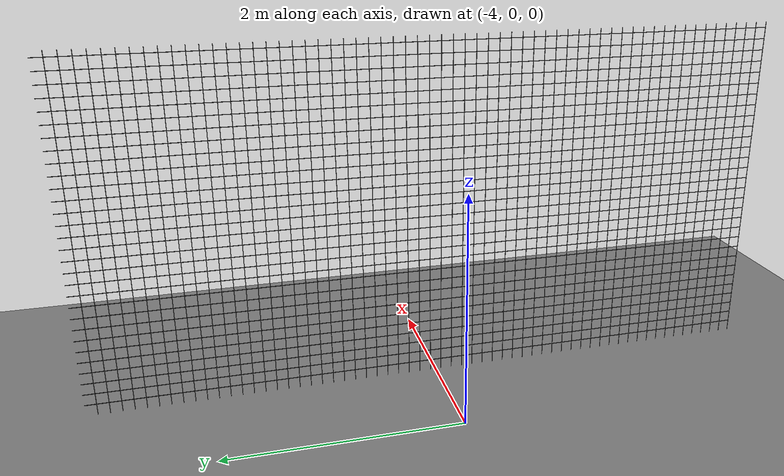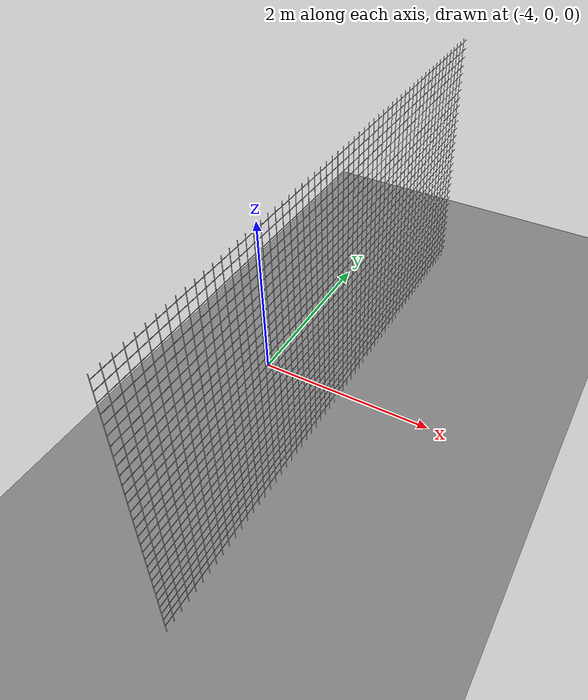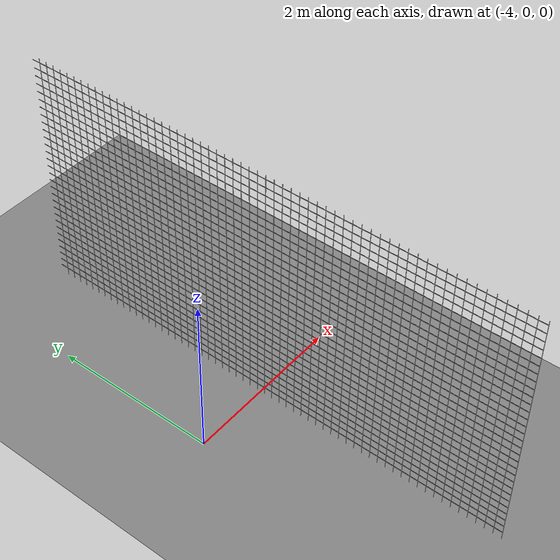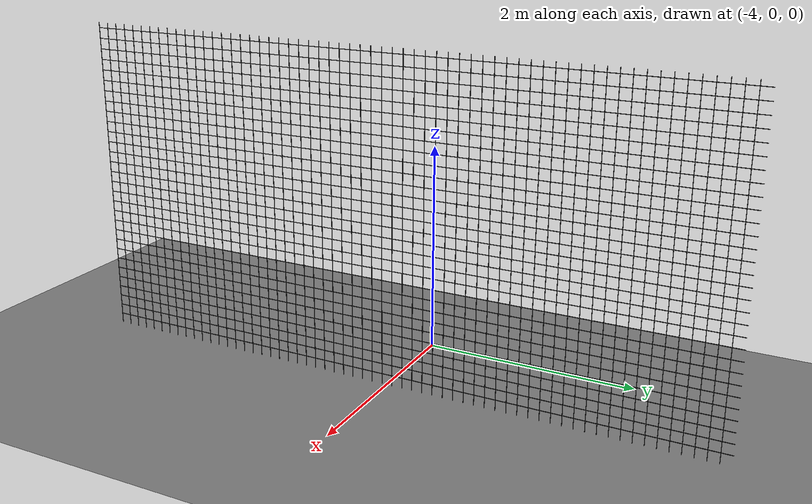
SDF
<sdf version="1.9">
 <world name="ecps295_lowbox_s19">
  <model name="ground_plane">
   <static>true</static>
   <link name="link">
    <collision name="collision">
     <geometry><plane><normal>0 0 1</normal><size>50 50</size></plane></geometry>
    </collision>
    <visual name="visual">
     <geometry><plane><normal>0 0 1</normal><size>50 50</size></plane></geometry>
     <material><ambient>0.5 0.5 0.5 1</ambient><diffuse>0.5 0.5 0.5 1</diffuse></material>
    </visual>
   </link>
  </model>
  <model name="net_w">
   <static>true</static>
   <link name="link">
    <collision name="c">
     <pose>-3.050 0.000 1.525 0 0 0</pose>
     <geometry><box><size>0.020 6.100 3.050</size></box></geometry>
    </collision>
    <visual name="v0">
     <pose>-3.050 -3.050 1.525 0 0 0.0000</pose>
     <geometry><box><size>0.004 0.004 3.050</size></box></geometry>
     <material><ambient>0.16 0.16 0.16 1</ambient><diffuse>0.16 0.16 0.16 1</diffuse></material>
    </visual>
    <visual name="v1">
     <pose>-3.050 -2.950 1.525 0 0 0.0000</pose>
     <geometry><box><size>0.004 0.004 3.050</size></box></geometry>
     <material><ambient>0.16 0.16 0.16 1</ambient><diffuse>0.16 0.16 0.16 1</diffuse></material>
    </visual>
    <visual name="v2">
     <pose>-3.050 -2.850 1.525 0 0 0.0000</pose>
     <geometry><box><size>0.004 0.004 3.050</size></box></geometry>
     <material><ambient>0.16 0.16 0.16 1</ambient><diffuse>0.16 0.16 0.16 1</diffuse></material>
    </visual>
    <visual name="v3">
     <pose>-3.050 -2.750 1.525 0 0 0.0000</pose>
     <geometry><box><size>0.004 0.004 3.050</size></box></geometry>
     <material><ambient>0.16 0.16 0.16 1</ambient><diffuse>0.16 0.16 0.16 1</diffuse></material>
    </visual>
    <visual name="v4">
     <pose>-3.050 -2.650 1.525 0 0 0.0000</pose>
     <geometry><box><size>0.004 0.004 3.050</size></box></geometry>
     <material><ambient>0.16 0.16 0.16 1</ambient><diffuse>0.16 0.16 0.16 1</diffuse></material>
    </visual>
    <visual name="v5">
     <pose>-3.050 -2.550 1.525 0 0 0.0000</pose>
     <geometry><box><size>0.004 0.004 3.050</size></box></geometry>
     <material><ambient>0.16 0.16 0.16 1</ambient><diffuse>0.16 0.16 0.16 1</diffuse></material>
    </visual>
    <visual name="v6">
     <pose>-3.050 -2.450 1.525 0 0 0.0000</pose>
     <geometry><box><size>0.004 0.004 3.050</size></box></geometry>
     <material><ambient>0.16 0.16 0.16 1</ambient><diffuse>0.16 0.16 0.16 1</diffuse></material>
    </visual>
    <visual name="v7">
     <pose>-3.050 -2.350 1.525 0 0 0.0000</pose>
     <geometry><box><size>0.004 0.004 3.050</size></box></geometry>
     <material><ambient>0.16 0.16 0.16 1</ambient><diffuse>0.16 0.16 0.16 1</diffuse></material>
    </visual>
    <visual name="v8">
     <pose>-3.050 -2.250 1.525 0 0 0.0000</pose>
     <geometry><box><size>0.004 0.004 3.050</size></box></geometry>
     <material><ambient>0.16 0.16 0.16 1</ambient><diffuse>0.16 0.16 0.16 1</diffuse></material>
    </visual>
    <visual name="v9">
     <pose>-3.050 -2.150 1.525 0 0 0.0000</pose>
     <geometry><box><size>0.004 0.004 3.050</size></box></geometry>
     <material><ambient>0.16 0.16 0.16 1</ambient><diffuse>0.16 0.16 0.16 1</diffuse></material>
    </visual>
    <visual name="v10">
     <pose>-3.050 -2.050 1.525 0 0 0.0000</pose>
     <geometry><box><size>0.004 0.004 3.050</size></box></geometry>
     <material><ambient>0.16 0.16 0.16 1</ambient><diffuse>0.16 0.16 0.16 1</diffuse></material>
    </visual>
    <visual name="v11">
     <pose>-3.050 -1.950 1.525 0 0 0.0000</pose>
     <geometry><box><size>0.004 0.004 3.050</size></box></geometry>
     <material><ambient>0.16 0.16 0.16 1</ambient><diffuse>0.16 0.16 0.16 1</diffuse></material>
    </visual>
    <visual name="v12">
     <pose>-3.050 -1.850 1.525 0 0 0.0000</pose>
     <geometry><box><size>0.004 0.004 3.050</size></box></geometry>
     <material><ambient>0.16 0.16 0.16 1</ambient><diffuse>0.16 0.16 0.16 1</diffuse></material>
    </visual>
    <visual name="v13">
     <pose>-3.050 -1.750 1.525 0 0 0.0000</pose>
     <geometry><box><size>0.004 0.004 3.050</size></box></geometry>
     <material><ambient>0.16 0.16 0.16 1</ambient><diffuse>0.16 0.16 0.16 1</diffuse></material>
    </visual>
    <visual name="v14">
     <pose>-3.050 -1.650 1.525 0 0 0.0000</pose>
     <geometry><box><size>0.004 0.004 3.050</size></box></geometry>
     <material><ambient>0.16 0.16 0.16 1</ambient><diffuse>0.16 0.16 0.16 1</diffuse></material>
    </visual>
    <visual name="v15">
     <pose>-3.050 -1.550 1.525 0 0 0.0000</pose>
     <geometry><box><size>0.004 0.004 3.050</size></box></geometry>
     <material><ambient>0.16 0.16 0.16 1</ambient><diffuse>0.16 0.16 0.16 1</diffuse></material>
    </visual>
    <visual name="v16">
     <pose>-3.050 -1.450 1.525 0 0 0.0000</pose>
     <geometry><box><size>0.004 0.004 3.050</size></box></geometry>
     <material><ambient>0.16 0.16 0.16 1</ambient><diffuse>0.16 0.16 0.16 1</diffuse></material>
    </visual>
    <visual name="v17">
     <pose>-3.050 -1.350 1.525 0 0 0.0000</pose>
     <geometry><box><size>0.004 0.004 3.050</size></box></geometry>
     <material><ambient>0.16 0.16 0.16 1</ambient><diffuse>0.16 0.16 0.16 1</diffuse></material>
    </visual>
    <visual name="v18">
     <pose>-3.050 -1.250 1.525 0 0 0.0000</pose>
     <geometry><box><size>0.004 0.004 3.050</size></box></geometry>
     <material><ambient>0.16 0.16 0.16 1</ambient><diffuse>0.16 0.16 0.16 1</diffuse></material>
    </visual>
    <visual name="v19">
     <pose>-3.050 -1.150 1.525 0 0 0.0000</pose>
     <geometry><box><size>0.004 0.004 3.050</size></box></geometry>
     <material><ambient>0.16 0.16 0.16 1</ambient><diffuse>0.16 0.16 0.16 1</diffuse></material>
    </visual>
    <visual name="v20">
     <pose>-3.050 -1.050 1.525 0 0 0.0000</pose>
     <geometry><box><size>0.004 0.004 3.050</size></box></geometry>
     <material><ambient>0.16 0.16 0.16 1</ambient><diffuse>0.16 0.16 0.16 1</diffuse></material>
    </visual>
    <visual name="v21">
     <pose>-3.050 -0.950 1.525 0 0 0.0000</pose>
     <geometry><box><size>0.004 0.004 3.050</size></box></geometry>
     <material><ambient>0.16 0.16 0.16 1</ambient><diffuse>0.16 0.16 0.16 1</diffuse></material>
    </visual>
    <visual name="v22">
     <pose>-3.050 -0.850 1.525 0 0 0.0000</pose>
     <geometry><box><size>0.004 0.004 3.050</size></box></geometry>
     <material><ambient>0.16 0.16 0.16 1</ambient><diffuse>0.16 0.16 0.16 1</diffuse></material>
    </visual>
    <visual name="v23">
     <pose>-3.050 -0.750 1.525 0 0 0.0000</pose>
     <geometry><box><size>0.004 0.004 3.050</size></box></geometry>
     <material><ambient>0.16 0.16 0.16 1</ambient><diffuse>0.16 0.16 0.16 1</diffuse></material>
    </visual>
    <visual name="v24">
     <pose>-3.050 -0.650 1.525 0 0 0.0000</pose>
     <geometry><box><size>0.004 0.004 3.050</size></box></geometry>
     <material><ambient>0.16 0.16 0.16 1</ambient><diffuse>0.16 0.16 0.16 1</diffuse></material>
    </visual>
    <visual name="v25">
     <pose>-3.050 -0.550 1.525 0 0 0.0000</pose>
     <geometry><box><size>0.004 0.004 3.050</size></box></geometry>
     <material><ambient>0.16 0.16 0.16 1</ambient><diffuse>0.16 0.16 0.16 1</diffuse></material>
    </visual>
    <visual name="v26">
     <pose>-3.050 -0.450 1.525 0 0 0.0000</pose>
     <geometry><box><size>0.004 0.004 3.050</size></box></geometry>
     <material><ambient>0.16 0.16 0.16 1</ambient><diffuse>0.16 0.16 0.16 1</diffuse></material>
    </visual>
    <visual name="v27">
     <pose>-3.050 -0.350 1.525 0 0 0.0000</pose>
     <geometry><box><size>0.004 0.004 3.050</size></box></geometry>
     <material><ambient>0.16 0.16 0.16 1</ambient><diffuse>0.16 0.16 0.16 1</diffuse></material>
    </visual>
    <visual name="v28">
     <pose>-3.050 -0.250 1.525 0 0 0.0000</pose>
     <geometry><box><size>0.004 0.004 3.050</size></box></geometry>
     <material><ambient>0.16 0.16 0.16 1</ambient><diffuse>0.16 0.16 0.16 1</diffuse></material>
    </visual>
    <visual name="v29">
     <pose>-3.050 -0.150 1.525 0 0 0.0000</pose>
     <geometry><box><size>0.004 0.004 3.050</size></box></geometry>
     <material><ambient>0.16 0.16 0.16 1</ambient><diffuse>0.16 0.16 0.16 1</diffuse></material>
    </visual>
    <visual name="v30">
     <pose>-3.050 -0.050 1.525 0 0 0.0000</pose>
     <geometry><box><size>0.004 0.004 3.050</size></box></geometry>
     <material><ambient>0.16 0.16 0.16 1</ambient><diffuse>0.16 0.16 0.16 1</diffuse></material>
    </visual>
    <visual name="v31">
     <pose>-3.050 0.050 1.525 0 0 0.0000</pose>
     <geometry><box><size>0.004 0.004 3.050</size></box></geometry>
     <material><ambient>0.16 0.16 0.16 1</ambient><diffuse>0.16 0.16 0.16 1</diffuse></material>
    </visual>
    <visual name="v32">
     <pose>-3.050 0.150 1.525 0 0 0.0000</pose>
     <geometry><box><size>0.004 0.004 3.050</size></box></geometry>
     <material><ambient>0.16 0.16 0.16 1</ambient><diffuse>0.16 0.16 0.16 1</diffuse></material>
    </visual>
    <visual name="v33">
     <pose>-3.050 0.250 1.525 0 0 0.0000</pose>
     <geometry><box><size>0.004 0.004 3.050</size></box></geometry>
     <material><ambient>0.16 0.16 0.16 1</ambient><diffuse>0.16 0.16 0.16 1</diffuse></material>
    </visual>
    <visual name="v34">
     <pose>-3.050 0.350 1.525 0 0 0.0000</pose>
     <geometry><box><size>0.004 0.004 3.050</size></box></geometry>
     <material><ambient>0.16 0.16 0.16 1</ambient><diffuse>0.16 0.16 0.16 1</diffuse></material>
    </visual>
    <visual name="v35">
     <pose>-3.050 0.450 1.525 0 0 0.0000</pose>
     <geometry><box><size>0.004 0.004 3.050</size></box></geometry>
     <material><ambient>0.16 0.16 0.16 1</ambient><diffuse>0.16 0.16 0.16 1</diffuse></material>
    </visual>
    <visual name="v36">
     <pose>-3.050 0.550 1.525 0 0 0.0000</pose>
     <geometry><box><size>0.004 0.004 3.050</size></box></geometry>
     <material><ambient>0.16 0.16 0.16 1</ambient><diffuse>0.16 0.16 0.16 1</diffuse></material>
    </visual>
    <visual name="v37">
     <pose>-3.050 0.650 1.525 0 0 0.0000</pose>
     <geometry><box><size>0.004 0.004 3.050</size></box></geometry>
     <material><ambient>0.16 0.16 0.16 1</ambient><diffuse>0.16 0.16 0.16 1</diffuse></material>
    </visual>
    <visual name="v38">
     <pose>-3.050 0.750 1.525 0 0 0.0000</pose>
     <geometry><box><size>0.004 0.004 3.050</size></box></geometry>
     <material><ambient>0.16 0.16 0.16 1</ambient><diffuse>0.16 0.16 0.16 1</diffuse></material>
    </visual>
    <visual name="v39">
     <pose>-3.050 0.850 1.525 0 0 0.0000</pose>
     <geometry><box><size>0.004 0.004 3.050</size></box></geometry>
     <material><ambient>0.16 0.16 0.16 1</ambient><diffuse>0.16 0.16 0.16 1</diffuse></material>
    </visual>
    <visual name="v40">
     <pose>-3.050 0.950 1.525 0 0 0.0000</pose>
     <geometry><box><size>0.004 0.004 3.050</size></box></geometry>
     <material><ambient>0.16 0.16 0.16 1</ambient><diffuse>0.16 0.16 0.16 1</diffuse></material>
    </visual>
    <visual name="v41">
     <pose>-3.050 1.050 1.525 0 0 0.0000</pose>
     <geometry><box><size>0.004 0.004 3.050</size></box></geometry>
     <material><ambient>0.16 0.16 0.16 1</ambient><diffuse>0.16 0.16 0.16 1</diffuse></material>
    </visual>
    <visual name="v42">
     <pose>-3.050 1.150 1.525 0 0 0.0000</pose>
     <geometry><box><size>0.004 0.004 3.050</size></box></geometry>
     <material><ambient>0.16 0.16 0.16 1</ambient><diffuse>0.16 0.16 0.16 1</diffuse></material>
    </visual>
    <visual name="v43">
     <pose>-3.050 1.250 1.525 0 0 0.0000</pose>
     <geometry><box><size>0.004 0.004 3.050</size></box></geometry>
     <material><ambient>0.16 0.16 0.16 1</ambient><diffuse>0.16 0.16 0.16 1</diffuse></material>
    </visual>
    <visual name="v44">
     <pose>-3.050 1.350 1.525 0 0 0.0000</pose>
     <geometry><box><size>0.004 0.004 3.050</size></box></geometry>
     <material><ambient>0.16 0.16 0.16 1</ambient><diffuse>0.16 0.16 0.16 1</diffuse></material>
    </visual>
    <visual name="v45">
     <pose>-3.050 1.450 1.525 0 0 0.0000</pose>
     <geometry><box><size>0.004 0.004 3.050</size></box></geometry>
     <material><ambient>0.16 0.16 0.16 1</ambient><diffuse>0.16 0.16 0.16 1</diffuse></material>
    </visual>
    <visual name="v46">
     <pose>-3.050 1.550 1.525 0 0 0.0000</pose>
     <geometry><box><size>0.004 0.004 3.050</size></box></geometry>
     <material><ambient>0.16 0.16 0.16 1</ambient><diffuse>0.16 0.16 0.16 1</diffuse></material>
    </visual>
    <visual name="v47">
     <pose>-3.050 1.650 1.525 0 0 0.0000</pose>
     <geometry><box><size>0.004 0.004 3.050</size></box></geometry>
     <material><ambient>0.16 0.16 0.16 1</ambient><diffuse>0.16 0.16 0.16 1</diffuse></material>
    </visual>
    <visual name="v48">
     <pose>-3.050 1.750 1.525 0 0 0.0000</pose>
     <geometry><box><size>0.004 0.004 3.050</size></box></geometry>
     <material><ambient>0.16 0.16 0.16 1</ambient><diffuse>0.16 0.16 0.16 1</diffuse></material>
    </visual>
    <visual name="v49">
     <pose>-3.050 1.850 1.525 0 0 0.0000</pose>
     <geometry><box><size>0.004 0.004 3.050</size></box></geometry>
     <material><ambient>0.16 0.16 0.16 1</ambient><diffuse>0.16 0.16 0.16 1</diffuse></material>
    </visual>
    <visual name="v50">
     <pose>-3.050 1.950 1.525 0 0 0.0000</pose>
     <geometry><box><size>0.004 0.004 3.050</size></box></geometry>
     <material><ambient>0.16 0.16 0.16 1</ambient><diffuse>0.16 0.16 0.16 1</diffuse></material>
    </visual>
    <visual name="v51">
     <pose>-3.050 2.050 1.525 0 0 0.0000</pose>
     <geometry><box><size>0.004 0.004 3.050</size></box></geometry>
     <material><ambient>0.16 0.16 0.16 1</ambient><diffuse>0.16 0.16 0.16 1</diffuse></material>
    </visual>
    <visual name="v52">
     <pose>-3.050 2.150 1.525 0 0 0.0000</pose>
     <geometry><box><size>0.004 0.004 3.050</size></box></geometry>
     <material><ambient>0.16 0.16 0.16 1</ambient><diffuse>0.16 0.16 0.16 1</diffuse></material>
    </visual>
    <visual name="v53">
     <pose>-3.050 2.250 1.525 0 0 0.0000</pose>
     <geometry><box><size>0.004 0.004 3.050</size></box></geometry>
     <material><ambient>0.16 0.16 0.16 1</ambient><diffuse>0.16 0.16 0.16 1</diffuse></material>
    </visual>
    <visual name="v54">
     <pose>-3.050 2.350 1.525 0 0 0.0000</pose>
     <geometry><box><size>0.004 0.004 3.050</size></box></geometry>
     <material><ambient>0.16 0.16 0.16 1</ambient><diffuse>0.16 0.16 0.16 1</diffuse></material>
    </visual>
    <visual name="v55">
     <pose>-3.050 2.450 1.525 0 0 0.0000</pose>
     <geometry><box><size>0.004 0.004 3.050</size></box></geometry>
     <material><ambient>0.16 0.16 0.16 1</ambient><diffuse>0.16 0.16 0.16 1</diffuse></material>
    </visual>
    <visual name="v56">
     <pose>-3.050 2.550 1.525 0 0 0.0000</pose>
     <geometry><box><size>0.004 0.004 3.050</size></box></geometry>
     <material><ambient>0.16 0.16 0.16 1</ambient><diffuse>0.16 0.16 0.16 1</diffuse></material>
    </visual>
    <visual name="v57">
     <pose>-3.050 2.650 1.525 0 0 0.0000</pose>
     <geometry><box><size>0.004 0.004 3.050</size></box></geometry>
     <material><ambient>0.16 0.16 0.16 1</ambient><diffuse>0.16 0.16 0.16 1</diffuse></material>
    </visual>
    <visual name="v58">
     <pose>-3.050 2.750 1.525 0 0 0.0000</pose>
     <geometry><box><size>0.004 0.004 3.050</size></box></geometry>
     <material><ambient>0.16 0.16 0.16 1</ambient><diffuse>0.16 0.16 0.16 1</diffuse></material>
    </visual>
    <visual name="v59">
     <pose>-3.050 2.850 1.525 0 0 0.0000</pose>
     <geometry><box><size>0.004 0.004 3.050</size></box></geometry>
     <material><ambient>0.16 0.16 0.16 1</ambient><diffuse>0.16 0.16 0.16 1</diffuse></material>
    </visual>
    <visual name="v60">
     <pose>-3.050 2.950 1.525 0 0 0.0000</pose>
     <geometry><box><size>0.004 0.004 3.050</size></box></geometry>
     <material><ambient>0.16 0.16 0.16 1</ambient><diffuse>0.16 0.16 0.16 1</diffuse></material>
    </visual>
    <visual name="h1">
     <pose>-3.050 0.000 0.100 0 0 0.0000</pose>
     <geometry><box><size>0.004 6.100 0.004</size></box></geometry>
     <material><ambient>0.16 0.16 0.16 1</ambient><diffuse>0.16 0.16 0.16 1</diffuse></material>
    </visual>
    <visual name="h2">
     <pose>-3.050 0.000 0.200 0 0 0.0000</pose>
     <geometry><box><size>0.004 6.100 0.004</size></box></geometry>
     <material><ambient>0.16 0.16 0.16 1</ambient><diffuse>0.16 0.16 0.16 1</diffuse></material>
    </visual>
    <visual name="h3">
     <pose>-3.050 0.000 0.300 0 0 0.0000</pose>
     <geometry><box><size>0.004 6.100 0.004</size></box></geometry>
     <material><ambient>0.16 0.16 0.16 1</ambient><diffuse>0.16 0.16 0.16 1</diffuse></material>
    </visual>
    <visual name="h4">
     <pose>-3.050 0.000 0.400 0 0 0.0000</pose>
     <geometry><box><size>0.004 6.100 0.004</size></box></geometry>
     <material><ambient>0.16 0.16 0.16 1</ambient><diffuse>0.16 0.16 0.16 1</diffuse></material>
    </visual>
    <visual name="h5">
     <pose>-3.050 0.000 0.500 0 0 0.0000</pose>
     <geometry><box><size>0.004 6.100 0.004</size></box></geometry>
     <material><ambient>0.16 0.16 0.16 1</ambient><diffuse>0.16 0.16 0.16 1</diffuse></material>
    </visual>
    <visual name="h6">
     <pose>-3.050 0.000 0.600 0 0 0.0000</pose>
     <geometry><box><size>0.004 6.100 0.004</size></box></geometry>
     <material><ambient>0.16 0.16 0.16 1</ambient><diffuse>0.16 0.16 0.16 1</diffuse></material>
    </visual>
    <visual name="h7">
     <pose>-3.050 0.000 0.700 0 0 0.0000</pose>
     <geometry><box><size>0.004 6.100 0.004</size></box></geometry>
     <material><ambient>0.16 0.16 0.16 1</ambient><diffuse>0.16 0.16 0.16 1</diffuse></material>
    </visual>
    <visual name="h8">
     <pose>-3.050 0.000 0.800 0 0 0.0000</pose>
     <geometry><box><size>0.004 6.100 0.004</size></box></geometry>
     <material><ambient>0.16 0.16 0.16 1</ambient><diffuse>0.16 0.16 0.16 1</diffuse></material>
    </visual>
    <visual name="h9">
     <pose>-3.050 0.000 0.900 0 0 0.0000</pose>
     <geometry><box><size>0.004 6.100 0.004</size></box></geometry>
     <material><ambient>0.16 0.16 0.16 1</ambient><diffuse>0.16 0.16 0.16 1</diffuse></material>
    </visual>
    <visual name="h10">
     <pose>-3.050 0.000 1.000 0 0 0.0000</pose>
     <geometry><box><size>0.004 6.100 0.004</size></box></geometry>
     <material><ambient>0.16 0.16 0.16 1</ambient><diffuse>0.16 0.16 0.16 1</diffuse></material>
    </visual>
    <visual name="h11">
     <pose>-3.050 0.000 1.100 0 0 0.0000</pose>
     <geometry><box><size>0.004 6.100 0.004</size></box></geometry>
     <material><ambient>0.16 0.16 0.16 1</ambient><diffuse>0.16 0.16 0.16 1</diffuse></material>
    </visual>
    <visual name="h12">
     <pose>-3.050 0.000 1.200 0 0 0.0000</pose>
     <geometry><box><size>0.004 6.100 0.004</size></box></geometry>
     <material><ambient>0.16 0.16 0.16 1</ambient><diffuse>0.16 0.16 0.16 1</diffuse></material>
    </visual>
    <visual name="h13">
     <pose>-3.050 0.000 1.300 0 0 0.0000</pose>
     <geometry><box><size>0.004 6.100 0.004</size></box></geometry>
     <material><ambient>0.16 0.16 0.16 1</ambient><diffuse>0.16 0.16 0.16 1</diffuse></material>
    </visual>
    <visual name="h14">
     <pose>-3.050 0.000 1.400 0 0 0.0000</pose>
     <geometry><box><size>0.004 6.100 0.004</size></box></geometry>
     <material><ambient>0.16 0.16 0.16 1</ambient><diffuse>0.16 0.16 0.16 1</diffuse></material>
    </visual>
    <visual name="h15">
     <pose>-3.050 0.000 1.500 0 0 0.0000</pose>
     <geometry><box><size>0.004 6.100 0.004</size></box></geometry>
     <material><ambient>0.16 0.16 0.16 1</ambient><diffuse>0.16 0.16 0.16 1</diffuse></material>
    </visual>
    <visual name="h16">
     <pose>-3.050 0.000 1.600 0 0 0.0000</pose>
     <geometry><box><size>0.004 6.100 0.004</size></box></geometry>
     <material><ambient>0.16 0.16 0.16 1</ambient><diffuse>0.16 0.16 0.16 1</diffuse></material>
    </visual>
    <visual name="h17">
     <pose>-3.050 0.000 1.700 0 0 0.0000</pose>
     <geometry><box><size>0.004 6.100 0.004</size></box></geometry>
     <material><ambient>0.16 0.16 0.16 1</ambient><diffuse>0.16 0.16 0.16 1</diffuse></material>
    </visual>
    <visual name="h18">
     <pose>-3.050 0.000 1.800 0 0 0.0000</pose>
     <geometry><box><size>0.004 6.100 0.004</size></box></geometry>
     <material><ambient>0.16 0.16 0.16 1</ambient><diffuse>0.16 0.16 0.16 1</diffuse></material>
    </visual>
    <visual name="h19">
     <pose>-3.050 0.000 1.900 0 0 0.0000</pose>
     <geometry><box><size>0.004 6.100 0.004</size></box></geometry>
     <material><ambient>0.16 0.16 0.16 1</ambient><diffuse>0.16 0.16 0.16 1</diffuse></material>
    </visual>
    <visual name="h20">
     <pose>-3.050 0.000 2.000 0 0 0.0000</pose>
     <geometry><box><size>0.004 6.100 0.004</size></box></geometry>
     <material><ambient>0.16 0.16 0.16 1</ambient><diffuse>0.16 0.16 0.16 1</diffuse></material>
    </visual>
    <visual name="h21">
     <pose>-3.050 0.000 2.100 0 0 0.0000</pose>
     <geometry><box><size>0.004 6.100 0.004</size></box></geometry>
     <material><ambient>0.16 0.16 0.16 1</ambient><diffuse>0.16 0.16 0.16 1</diffuse></material>
    </visual>
    <visual name="h22">
     <pose>-3.050 0.000 2.200 0 0 0.0000</pose>
     <geometry><box><size>0.004 6.100 0.004</size></box></geometry>
     <material><ambient>0.16 0.16 0.16 1</ambient><diffuse>0.16 0.16 0.16 1</diffuse></material>
    </visual>
    <visual name="h23">
     <pose>-3.050 0.000 2.300 0 0 0.0000</pose>
     <geometry><box><size>0.004 6.100 0.004</size></box></geometry>
     <material><ambient>0.16 0.16 0.16 1</ambient><diffuse>0.16 0.16 0.16 1</diffuse></material>
    </visual>
    <visual name="h24">
     <pose>-3.050 0.000 2.400 0 0 0.0000</pose>
     <geometry><box><size>0.004 6.100 0.004</size></box></geometry>
     <material><ambient>0.16 0.16 0.16 1</ambient><diffuse>0.16 0.16 0.16 1</diffuse></material>
    </visual>
    <visual name="h25">
     <pose>-3.050 0.000 2.500 0 0 0.0000</pose>
     <geometry><box><size>0.004 6.100 0.004</size></box></geometry>
     <material><ambient>0.16 0.16 0.16 1</ambient><diffuse>0.16 0.16 0.16 1</diffuse></material>
    </visual>
    <visual name="h26">
     <pose>-3.050 0.000 2.600 0 0 0.0000</pose>
     <geometry><box><size>0.004 6.100 0.004</size></box></geometry>
     <material><ambient>0.16 0.16 0.16 1</ambient><diffuse>0.16 0.16 0.16 1</diffuse></material>
    </visual>
    <visual name="h27">
     <pose>-3.050 0.000 2.700 0 0 0.0000</pose>
     <geometry><box><size>0.004 6.100 0.004</size></box></geometry>
     <material><ambient>0.16 0.16 0.16 1</ambient><diffuse>0.16 0.16 0.16 1</diffuse></material>
    </visual>
    <visual name="h28">
     <pose>-3.050 0.000 2.800 0 0 0.0000</pose>
     <geometry><box><size>0.004 6.100 0.004</size></box></geometry>
     <material><ambient>0.16 0.16 0.16 1</ambient><diffuse>0.16 0.16 0.16 1</diffuse></material>
    </visual>
    <visual name="h29">
     <pose>-3.050 0.000 2.900 0 0 0.0000</pose>
     <geometry><box><size>0.004 6.100 0.004</size></box></geometry>
     <material><ambient>0.16 0.16 0.16 1</ambient><diffuse>0.16 0.16 0.16 1</diffuse></material>
    </visual>
    <visual name="h30">
     <pose>-3.050 0.000 3.000 0 0 0.0000</pose>
     <geometry><box><size>0.004 6.100 0.004</size></box></geometry>
     <material><ambient>0.16 0.16 0.16 1</ambient><diffuse>0.16 0.16 0.16 1</diffuse></material>
    </visual>
   </link>
  </model>
 </world>
</sdf>
